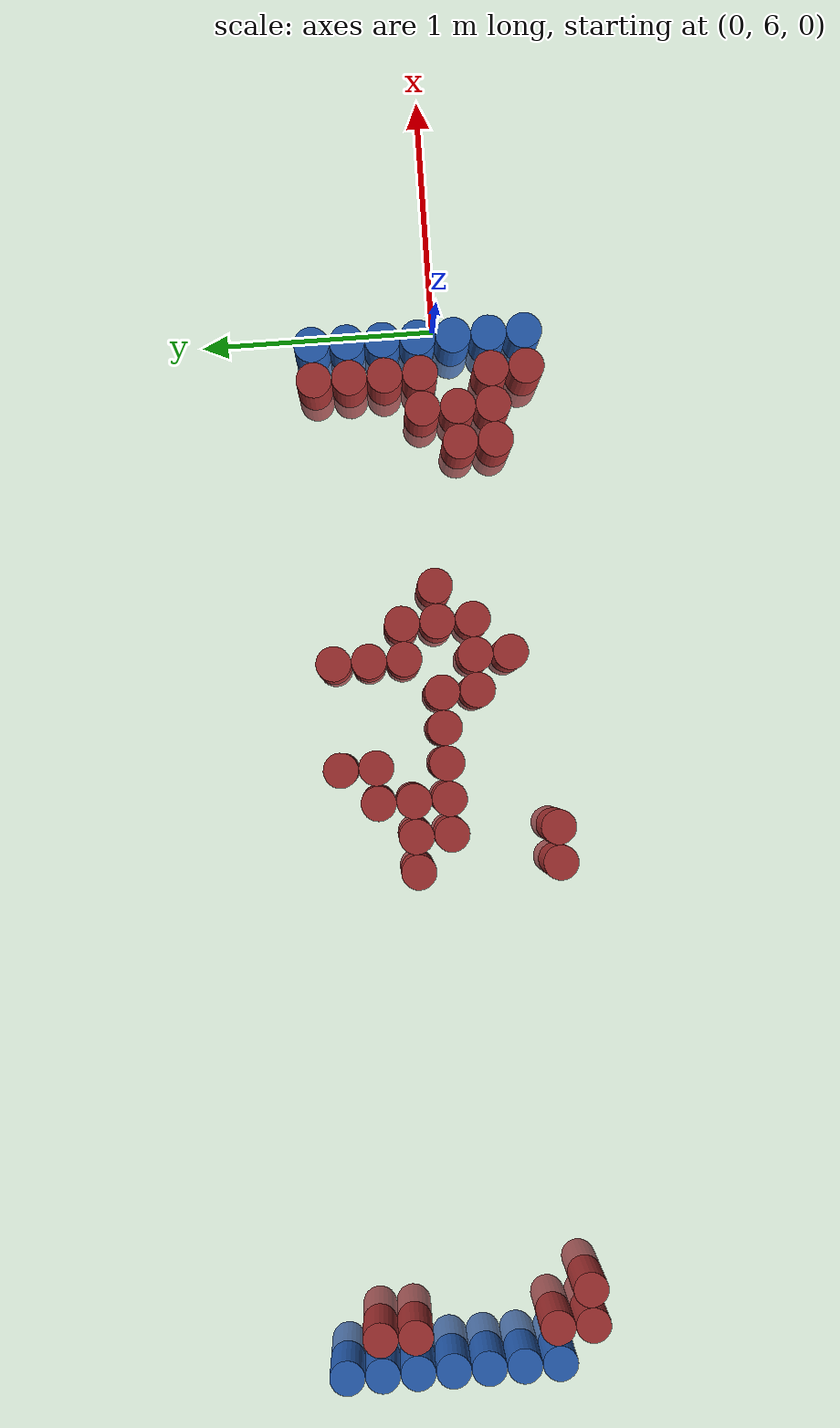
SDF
<sdf version="1.6">
 <world name="default">
  <model name="ground_plane">
   <static>1</static>
   <link name="link">
    <collision name="collision">
     <geometry><plane><normal>0 0 1</normal><size>100 100</size></plane></geometry>
     <surface><friction><ode><mu>100</mu><mu2>50</mu2></ode></friction></surface>
    </collision>
    <visual name="visual">
     <cast_shadows>0</cast_shadows>
     <geometry><plane><normal>0 0 1</normal><size>100 100</size></plane></geometry>
     <material>
      <script><uri>file://media/materials/scripts/gazebo.material</uri><name>Gazebo/Grey</name></script>
     </material>
    </visual>
   </link>
  </model>
  <model name="unit_cylinder_100">
   <static>1</static>
   <pose>-4.425000 5.775000 0.000000 0.000000 0.000000 0.000000</pose>
   <link name="link">
    <inertial>
     <mass>1</mass>
     <inertia><ixx>0.145833</ixx><ixy>0</ixy><ixz>0</ixz><iyy>0.145833</iyy><iyz>0</iyz><izz>0.125</izz></inertia>
    </inertial>
    <collision name="collision">
     <geometry><cylinder><radius>0.075000</radius><length>1</length></cylinder></geometry>
    </collision>
    <visual name="visual">
     <geometry><cylinder><radius>0.075000</radius><length>1</length></cylinder></geometry>
     <material>
      <ambient>0.152000 0.379000 0.720000 1</ambient>
      <diffuse>0.152000 0.379000 0.720000 1</diffuse>
     </material>
     <material>
      <script><name>Gazebo/Grey</name><uri>file://media/materials/scripts/gazebo.material</uri></script>
     </material>
    </visual>
   </link>
  </model>
  <model name="unit_cylinder_101">
   <static>1</static>
   <pose>-4.425000 5.925000 0.000000 0.000000 0.000000 0.000000</pose>
   <link name="link">
    <inertial>
     <mass>1</mass>
     <inertia><ixx>0.145833</ixx><ixy>0</ixy><ixz>0</ixz><iyy>0.145833</iyy><iyz>0</iyz><izz>0.125</izz></inertia>
    </inertial>
    <collision name="collision">
     <geometry><cylinder><radius>0.075000</radius><length>1</length></cylinder></geometry>
    </collision>
    <visual name="visual">
     <geometry><cylinder><radius>0.075000</radius><length>1</length></cylinder></geometry>
     <material>
      <ambient>0.152000 0.379000 0.720000 1</ambient>
      <diffuse>0.152000 0.379000 0.720000 1</diffuse>
     </material>
     <material>
      <script><name>Gazebo/Grey</name><uri>file://media/materials/scripts/gazebo.material</uri></script>
     </material>
    </visual>
   </link>
  </model>
  <model name="unit_cylinder_102">
   <static>1</static>
   <pose>-4.425000 6.075000 0.000000 0.000000 0.000000 0.000000</pose>
   <link name="link">
    <inertial>
     <mass>1</mass>
     <inertia><ixx>0.145833</ixx><ixy>0</ixy><ixz>0</ixz><iyy>0.145833</iyy><iyz>0</iyz><izz>0.125</izz></inertia>
    </inertial>
    <collision name="collision">
     <geometry><cylinder><radius>0.075000</radius><length>1</length></cylinder></geometry>
    </collision>
    <visual name="visual">
     <geometry><cylinder><radius>0.075000</radius><length>1</length></cylinder></geometry>
     <material>
      <ambient>0.152000 0.379000 0.720000 1</ambient>
      <diffuse>0.152000 0.379000 0.720000 1</diffuse>
     </material>
     <material>
      <script><name>Gazebo/Grey</name><uri>file://media/materials/scripts/gazebo.material</uri></script>
     </material>
    </visual>
   </link>
  </model>
  <model name="unit_cylinder_103">
   <static>1</static>
   <pose>-4.425000 6.225000 0.000000 0.000000 0.000000 0.000000</pose>
   <link name="link">
    <inertial>
     <mass>1</mass>
     <inertia><ixx>0.145833</ixx><ixy>0</ixy><ixz>0</ixz><iyy>0.145833</iyy><iyz>0</iyz><izz>0.125</izz></inertia>
    </inertial>
    <collision name="collision">
     <geometry><cylinder><radius>0.075000</radius><length>1</length></cylinder></geometry>
    </collision>
    <visual name="visual">
     <geometry><cylinder><radius>0.075000</radius><length>1</length></cylinder></geometry>
     <material>
      <ambient>0.152000 0.379000 0.720000 1</ambient>
      <diffuse>0.152000 0.379000 0.720000 1</diffuse>
     </material>
     <material>
      <script><name>Gazebo/Grey</name><uri>file://media/materials/scripts/gazebo.material</uri></script>
     </material>
    </visual>
   </link>
  </model>
  <model name="unit_cylinder_104">
   <static>1</static>
   <pose>-4.425000 6.375000 0.000000 0.000000 0.000000 0.000000</pose>
   <link name="link">
    <inertial>
     <mass>1</mass>
     <inertia><ixx>0.145833</ixx><ixy>0</ixy><ixz>0</ixz><iyy>0.145833</iyy><iyz>0</iyz><izz>0.125</izz></inertia>
    </inertial>
    <collision name="collision">
     <geometry><cylinder><radius>0.075000</radius><length>1</length></cylinder></geometry>
    </collision>
    <visual name="visual">
     <geometry><cylinder><radius>0.075000</radius><length>1</length></cylinder></geometry>
     <material>
      <ambient>0.152000 0.379000 0.720000 1</ambient>
      <diffuse>0.152000 0.379000 0.720000 1</diffuse>
     </material>
     <material>
      <script><name>Gazebo/Grey</name><uri>file://media/materials/scripts/gazebo.material</uri></script>
     </material>
    </visual>
   </link>
  </model>
  <model name="unit_cylinder_105">
   <static>1</static>
   <pose>-4.425000 6.525000 0.000000 0.000000 0.000000 0.000000</pose>
   <link name="link">
    <inertial>
     <mass>1</mass>
     <inertia><ixx>0.145833</ixx><ixy>0</ixy><ixz>0</ixz><iyy>0.145833</iyy><iyz>0</iyz><izz>0.125</izz></inertia>
    </inertial>
    <collision name="collision">
     <geometry><cylinder><radius>0.075000</radius><length>1</length></cylinder></geometry>
    </collision>
    <visual name="visual">
     <geometry><cylinder><radius>0.075000</radius><length>1</length></cylinder></geometry>
     <material>
      <ambient>0.152000 0.379000 0.720000 1</ambient>
      <diffuse>0.152000 0.379000 0.720000 1</diffuse>
     </material>
     <material>
      <script><name>Gazebo/Grey</name><uri>file://media/materials/scripts/gazebo.material</uri></script>
     </material>
    </visual>
   </link>
  </model>
  <model name="unit_cylinder_106">
   <static>1</static>
   <pose>-4.425000 6.675000 0.000000 0.000000 0.000000 0.000000</pose>
   <link name="link">
    <inertial>
     <mass>1</mass>
     <inertia><ixx>0.145833</ixx><ixy>0</ixy><ixz>0</ixz><iyy>0.145833</iyy><iyz>0</iyz><izz>0.125</izz></inertia>
    </inertial>
    <collision name="collision">
     <geometry><cylinder><radius>0.075000</radius><length>1</length></cylinder></geometry>
    </collision>
    <visual name="visual">
     <geometry><cylinder><radius>0.075000</radius><length>1</length></cylinder></geometry>
     <material>
      <ambient>0.152000 0.379000 0.720000 1</ambient>
      <diffuse>0.152000 0.379000 0.720000 1</diffuse>
     </material>
     <material>
      <script><name>Gazebo/Grey</name><uri>file://media/materials/scripts/gazebo.material</uri></script>
     </material>
    </visual>
   </link>
  </model>
  <model name="unit_cylinder_127">
   <static>1</static>
   <pose>-4.275000 5.625000 0.000000 0.000000 0.000000 0.000000</pose>
   <link name="link">
    <inertial>
     <mass>1</mass>
     <inertia><ixx>0.145833</ixx><ixy>0</ixy><ixz>0</ixz><iyy>0.145833</iyy><iyz>0</iyz><izz>0.125</izz></inertia>
    </inertial>
    <collision name="collision">
     <geometry><cylinder><radius>0.075000</radius><length>1</length></cylinder></geometry>
    </collision>
    <visual name="visual">
     <geometry><cylinder><radius>0.075000</radius><length>1</length></cylinder></geometry>
     <material>
      <ambient>0.648000 0.192000 0.192000 1</ambient>
      <diffuse>0.648000 0.192000 0.192000 1</diffuse>
     </material>
     <material>
      <script><name>Gazebo/Grey</name><uri>file://media/materials/scripts/gazebo.material</uri></script>
     </material>
    </visual>
   </link>
  </model>
  <model name="unit_cylinder_128">
   <static>1</static>
   <pose>-4.275000 5.775000 0.000000 0.000000 0.000000 0.000000</pose>
   <link name="link">
    <inertial>
     <mass>1</mass>
     <inertia><ixx>0.145833</ixx><ixy>0</ixy><ixz>0</ixz><iyy>0.145833</iyy><iyz>0</iyz><izz>0.125</izz></inertia>
    </inertial>
    <collision name="collision">
     <geometry><cylinder><radius>0.075000</radius><length>1</length></cylinder></geometry>
    </collision>
    <visual name="visual">
     <geometry><cylinder><radius>0.075000</radius><length>1</length></cylinder></geometry>
     <material>
      <ambient>0.648000 0.192000 0.192000 1</ambient>
      <diffuse>0.648000 0.192000 0.192000 1</diffuse>
     </material>
     <material>
      <script><name>Gazebo/Grey</name><uri>file://media/materials/scripts/gazebo.material</uri></script>
     </material>
    </visual>
   </link>
  </model>
  <model name="unit_cylinder_129">
   <static>1</static>
   <pose>-4.275000 6.375000 0.000000 0.000000 0.000000 0.000000</pose>
   <link name="link">
    <inertial>
     <mass>1</mass>
     <inertia><ixx>0.145833</ixx><ixy>0</ixy><ixz>0</ixz><iyy>0.145833</iyy><iyz>0</iyz><izz>0.125</izz></inertia>
    </inertial>
    <collision name="collision">
     <geometry><cylinder><radius>0.075000</radius><length>1</length></cylinder></geometry>
    </collision>
    <visual name="visual">
     <geometry><cylinder><radius>0.075000</radius><length>1</length></cylinder></geometry>
     <material>
      <ambient>0.648000 0.192000 0.192000 1</ambient>
      <diffuse>0.648000 0.192000 0.192000 1</diffuse>
     </material>
     <material>
      <script><name>Gazebo/Grey</name><uri>file://media/materials/scripts/gazebo.material</uri></script>
     </material>
    </visual>
   </link>
  </model>
  <model name="unit_cylinder_130">
   <static>1</static>
   <pose>-4.275000 6.525000 0.000000 0.000000 0.000000 0.000000</pose>
   <link name="link">
    <inertial>
     <mass>1</mass>
     <inertia><ixx>0.145833</ixx><ixy>0</ixy><ixz>0</ixz><iyy>0.145833</iyy><iyz>0</iyz><izz>0.125</izz></inertia>
    </inertial>
    <collision name="collision">
     <geometry><cylinder><radius>0.075000</radius><length>1</length></cylinder></geometry>
    </collision>
    <visual name="visual">
     <geometry><cylinder><radius>0.075000</radius><length>1</length></cylinder></geometry>
     <material>
      <ambient>0.648000 0.192000 0.192000 1</ambient>
      <diffuse>0.648000 0.192000 0.192000 1</diffuse>
     </material>
     <material>
      <script><name>Gazebo/Grey</name><uri>file://media/materials/scripts/gazebo.material</uri></script>
     </material>
    </visual>
   </link>
  </model>
  <model name="unit_cylinder_141">
   <static>1</static>
   <pose>-4.125000 5.625000 0.000000 0.000000 0.000000 0.000000</pose>
   <link name="link">
    <inertial>
     <mass>1</mass>
     <inertia><ixx>0.145833</ixx><ixy>0</ixy><ixz>0</ixz><iyy>0.145833</iyy><iyz>0</iyz><izz>0.125</izz></inertia>
    </inertial>
    <collision name="collision">
     <geometry><cylinder><radius>0.075000</radius><length>1</length></cylinder></geometry>
    </collision>
    <visual name="visual">
     <geometry><cylinder><radius>0.075000</radius><length>1</length></cylinder></geometry>
     <material>
      <ambient>0.648000 0.192000 0.192000 1</ambient>
      <diffuse>0.648000 0.192000 0.192000 1</diffuse>
     </material>
     <material>
      <script><name>Gazebo/Grey</name><uri>file://media/materials/scripts/gazebo.material</uri></script>
     </material>
    </visual>
   </link>
  </model>
  <model name="unit_cylinder_192">
   <static>1</static>
   <pose>-2.325000 5.625000 0.000000 0.000000 0.000000 0.000000</pose>
   <link name="link">
    <inertial>
     <mass>1</mass>
     <inertia><ixx>0.145833</ixx><ixy>0</ixy><ixz>0</ixz><iyy>0.145833</iyy><iyz>0</iyz><izz>0.125</izz></inertia>
    </inertial>
    <collision name="collision">
     <geometry><cylinder><radius>0.075000</radius><length>1</length></cylinder></geometry>
    </collision>
    <visual name="visual">
     <geometry><cylinder><radius>0.075000</radius><length>1</length></cylinder></geometry>
     <material>
      <ambient>0.648000 0.192000 0.192000 1</ambient>
      <diffuse>0.648000 0.192000 0.192000 1</diffuse>
     </material>
     <material>
      <script><name>Gazebo/Grey</name><uri>file://media/materials/scripts/gazebo.material</uri></script>
     </material>
    </visual>
   </link>
  </model>
  <model name="unit_cylinder_193">
   <static>1</static>
   <pose>-2.325000 6.225000 0.000000 0.000000 0.000000 0.000000</pose>
   <link name="link">
    <inertial>
     <mass>1</mass>
     <inertia><ixx>0.145833</ixx><ixy>0</ixy><ixz>0</ixz><iyy>0.145833</iyy><iyz>0</iyz><izz>0.125</izz></inertia>
    </inertial>
    <collision name="collision">
     <geometry><cylinder><radius>0.075000</radius><length>1</length></cylinder></geometry>
    </collision>
    <visual name="visual">
     <geometry><cylinder><radius>0.075000</radius><length>1</length></cylinder></geometry>
     <material>
      <ambient>0.648000 0.192000 0.192000 1</ambient>
      <diffuse>0.648000 0.192000 0.192000 1</diffuse>
     </material>
     <material>
      <script><name>Gazebo/Grey</name><uri>file://media/materials/scripts/gazebo.material</uri></script>
     </material>
    </visual>
   </link>
  </model>
  <model name="unit_cylinder_194">
   <static>1</static>
   <pose>-2.175000 5.625000 0.000000 0.000000 0.000000 0.000000</pose>
   <link name="link">
    <inertial>
     <mass>1</mass>
     <inertia><ixx>0.145833</ixx><ixy>0</ixy><ixz>0</ixz><iyy>0.145833</iyy><iyz>0</iyz><izz>0.125</izz></inertia>
    </inertial>
    <collision name="collision">
     <geometry><cylinder><radius>0.075000</radius><length>1</length></cylinder></geometry>
    </collision>
    <visual name="visual">
     <geometry><cylinder><radius>0.075000</radius><length>1</length></cylinder></geometry>
     <material>
      <ambient>0.648000 0.192000 0.192000 1</ambient>
      <diffuse>0.648000 0.192000 0.192000 1</diffuse>
     </material>
     <material>
      <script><name>Gazebo/Grey</name><uri>file://media/materials/scripts/gazebo.material</uri></script>
     </material>
    </visual>
   </link>
  </model>
  <model name="unit_cylinder_195">
   <static>1</static>
   <pose>-2.175000 6.075000 0.000000 0.000000 0.000000 0.000000</pose>
   <link name="link">
    <inertial>
     <mass>1</mass>
     <inertia><ixx>0.145833</ixx><ixy>0</ixy><ixz>0</ixz><iyy>0.145833</iyy><iyz>0</iyz><izz>0.125</izz></inertia>
    </inertial>
    <collision name="collision">
     <geometry><cylinder><radius>0.075000</radius><length>1</length></cylinder></geometry>
    </collision>
    <visual name="visual">
     <geometry><cylinder><radius>0.075000</radius><length>1</length></cylinder></geometry>
     <material>
      <ambient>0.648000 0.192000 0.192000 1</ambient>
      <diffuse>0.648000 0.192000 0.192000 1</diffuse>
     </material>
     <material>
      <script><name>Gazebo/Grey</name><uri>file://media/materials/scripts/gazebo.material</uri></script>
     </material>
    </visual>
   </link>
  </model>
  <model name="unit_cylinder_196">
   <static>1</static>
   <pose>-2.175000 6.225000 0.000000 0.000000 0.000000 0.000000</pose>
   <link name="link">
    <inertial>
     <mass>1</mass>
     <inertia><ixx>0.145833</ixx><ixy>0</ixy><ixz>0</ixz><iyy>0.145833</iyy><iyz>0</iyz><izz>0.125</izz></inertia>
    </inertial>
    <collision name="collision">
     <geometry><cylinder><radius>0.075000</radius><length>1</length></cylinder></geometry>
    </collision>
    <visual name="visual">
     <geometry><cylinder><radius>0.075000</radius><length>1</length></cylinder></geometry>
     <material>
      <ambient>0.648000 0.192000 0.192000 1</ambient>
      <diffuse>0.648000 0.192000 0.192000 1</diffuse>
     </material>
     <material>
      <script><name>Gazebo/Grey</name><uri>file://media/materials/scripts/gazebo.material</uri></script>
     </material>
    </visual>
   </link>
  </model>
  <model name="unit_cylinder_197">
   <static>1</static>
   <pose>-2.025000 6.075000 0.000000 0.000000 0.000000 0.000000</pose>
   <link name="link">
    <inertial>
     <mass>1</mass>
     <inertia><ixx>0.145833</ixx><ixy>0</ixy><ixz>0</ixz><iyy>0.145833</iyy><iyz>0</iyz><izz>0.125</izz></inertia>
    </inertial>
    <collision name="collision">
     <geometry><cylinder><radius>0.075000</radius><length>1</length></cylinder></geometry>
    </collision>
    <visual name="visual">
     <geometry><cylinder><radius>0.075000</radius><length>1</length></cylinder></geometry>
     <material>
      <ambient>0.648000 0.192000 0.192000 1</ambient>
      <diffuse>0.648000 0.192000 0.192000 1</diffuse>
     </material>
     <material>
      <script><name>Gazebo/Grey</name><uri>file://media/materials/scripts/gazebo.material</uri></script>
     </material>
    </visual>
   </link>
  </model>
  <model name="unit_cylinder_198">
   <static>1</static>
   <pose>-2.025000 6.225000 0.000000 0.000000 0.000000 0.000000</pose>
   <link name="link">
    <inertial>
     <mass>1</mass>
     <inertia><ixx>0.145833</ixx><ixy>0</ixy><ixz>0</ixz><iyy>0.145833</iyy><iyz>0</iyz><izz>0.125</izz></inertia>
    </inertial>
    <collision name="collision">
     <geometry><cylinder><radius>0.075000</radius><length>1</length></cylinder></geometry>
    </collision>
    <visual name="visual">
     <geometry><cylinder><radius>0.075000</radius><length>1</length></cylinder></geometry>
     <material>
      <ambient>0.648000 0.192000 0.192000 1</ambient>
      <diffuse>0.648000 0.192000 0.192000 1</diffuse>
     </material>
     <material>
      <script><name>Gazebo/Grey</name><uri>file://media/materials/scripts/gazebo.material</uri></script>
     </material>
    </visual>
   </link>
  </model>
  <model name="unit_cylinder_199">
   <static>1</static>
   <pose>-2.025000 6.375000 0.000000 0.000000 0.000000 0.000000</pose>
   <link name="link">
    <inertial>
     <mass>1</mass>
     <inertia><ixx>0.145833</ixx><ixy>0</ixy><ixz>0</ixz><iyy>0.145833</iyy><iyz>0</iyz><izz>0.125</izz></inertia>
    </inertial>
    <collision name="collision">
     <geometry><cylinder><radius>0.075000</radius><length>1</length></cylinder></geometry>
    </collision>
    <visual name="visual">
     <geometry><cylinder><radius>0.075000</radius><length>1</length></cylinder></geometry>
     <material>
      <ambient>0.648000 0.192000 0.192000 1</ambient>
      <diffuse>0.648000 0.192000 0.192000 1</diffuse>
     </material>
     <material>
      <script><name>Gazebo/Grey</name><uri>file://media/materials/scripts/gazebo.material</uri></script>
     </material>
    </visual>
   </link>
  </model>
  <model name="unit_cylinder_201">
   <static>1</static>
   <pose>-1.875000 6.075000 0.000000 0.000000 0.000000 0.000000</pose>
   <link name="link">
    <inertial>
     <mass>1</mass>
     <inertia><ixx>0.145833</ixx><ixy>0</ixy><ixz>0</ixz><iyy>0.145833</iyy><iyz>0</iyz><izz>0.125</izz></inertia>
    </inertial>
    <collision name="collision">
     <geometry><cylinder><radius>0.075000</radius><length>1</length></cylinder></geometry>
    </collision>
    <visual name="visual">
     <geometry><cylinder><radius>0.075000</radius><length>1</length></cylinder></geometry>
     <material>
      <ambient>0.648000 0.192000 0.192000 1</ambient>
      <diffuse>0.648000 0.192000 0.192000 1</diffuse>
     </material>
     <material>
      <script><name>Gazebo/Grey</name><uri>file://media/materials/scripts/gazebo.material</uri></script>
     </material>
    </visual>
   </link>
  </model>
  <model name="unit_cylinder_202">
   <static>1</static>
   <pose>-1.875000 6.375000 0.000000 0.000000 0.000000 0.000000</pose>
   <link name="link">
    <inertial>
     <mass>1</mass>
     <inertia><ixx>0.145833</ixx><ixy>0</ixy><ixz>0</ixz><iyy>0.145833</iyy><iyz>0</iyz><izz>0.125</izz></inertia>
    </inertial>
    <collision name="collision">
     <geometry><cylinder><radius>0.075000</radius><length>1</length></cylinder></geometry>
    </collision>
    <visual name="visual">
     <geometry><cylinder><radius>0.075000</radius><length>1</length></cylinder></geometry>
     <material>
      <ambient>0.648000 0.192000 0.192000 1</ambient>
      <diffuse>0.648000 0.192000 0.192000 1</diffuse>
     </material>
     <material>
      <script><name>Gazebo/Grey</name><uri>file://media/materials/scripts/gazebo.material</uri></script>
     </material>
    </visual>
   </link>
  </model>
  <model name="unit_cylinder_203">
   <static>1</static>
   <pose>-1.875000 6.525000 0.000000 0.000000 0.000000 0.000000</pose>
   <link name="link">
    <inertial>
     <mass>1</mass>
     <inertia><ixx>0.145833</ixx><ixy>0</ixy><ixz>0</ixz><iyy>0.145833</iyy><iyz>0</iyz><izz>0.125</izz></inertia>
    </inertial>
    <collision name="collision">
     <geometry><cylinder><radius>0.075000</radius><length>1</length></cylinder></geometry>
    </collision>
    <visual name="visual">
     <geometry><cylinder><radius>0.075000</radius><length>1</length></cylinder></geometry>
     <material>
      <ambient>0.648000 0.192000 0.192000 1</ambient>
      <diffuse>0.648000 0.192000 0.192000 1</diffuse>
     </material>
     <material>
      <script><name>Gazebo/Grey</name><uri>file://media/materials/scripts/gazebo.material</uri></script>
     </material>
    </visual>
   </link>
  </model>
  <model name="unit_cylinder_208">
   <static>1</static>
   <pose>-1.725000 6.075000 0.000000 0.000000 0.000000 0.000000</pose>
   <link name="link">
    <inertial>
     <mass>1</mass>
     <inertia><ixx>0.145833</ixx><ixy>0</ixy><ixz>0</ixz><iyy>0.145833</iyy><iyz>0</iyz><izz>0.125</izz></inertia>
    </inertial>
    <collision name="collision">
     <geometry><cylinder><radius>0.075000</radius><length>1</length></cylinder></geometry>
    </collision>
    <visual name="visual">
     <geometry><cylinder><radius>0.075000</radius><length>1</length></cylinder></geometry>
     <material>
      <ambient>0.648000 0.192000 0.192000 1</ambient>
      <diffuse>0.648000 0.192000 0.192000 1</diffuse>
     </material>
     <material>
      <script><name>Gazebo/Grey</name><uri>file://media/materials/scripts/gazebo.material</uri></script>
     </material>
    </visual>
   </link>
  </model>
  <model name="unit_cylinder_215">
   <static>1</static>
   <pose>-1.575000 5.925000 0.000000 0.000000 0.000000 0.000000</pose>
   <link name="link">
    <inertial>
     <mass>1</mass>
     <inertia><ixx>0.145833</ixx><ixy>0</ixy><ixz>0</ixz><iyy>0.145833</iyy><iyz>0</iyz><izz>0.125</izz></inertia>
    </inertial>
    <collision name="collision">
     <geometry><cylinder><radius>0.075000</radius><length>1</length></cylinder></geometry>
    </collision>
    <visual name="visual">
     <geometry><cylinder><radius>0.075000</radius><length>1</length></cylinder></geometry>
     <material>
      <ambient>0.648000 0.192000 0.192000 1</ambient>
      <diffuse>0.648000 0.192000 0.192000 1</diffuse>
     </material>
     <material>
      <script><name>Gazebo/Grey</name><uri>file://media/materials/scripts/gazebo.material</uri></script>
     </material>
    </visual>
   </link>
  </model>
  <model name="unit_cylinder_216">
   <static>1</static>
   <pose>-1.575000 6.075000 0.000000 0.000000 0.000000 0.000000</pose>
   <link name="link">
    <inertial>
     <mass>1</mass>
     <inertia><ixx>0.145833</ixx><ixy>0</ixy><ixz>0</ixz><iyy>0.145833</iyy><iyz>0</iyz><izz>0.125</izz></inertia>
    </inertial>
    <collision name="collision">
     <geometry><cylinder><radius>0.075000</radius><length>1</length></cylinder></geometry>
    </collision>
    <visual name="visual">
     <geometry><cylinder><radius>0.075000</radius><length>1</length></cylinder></geometry>
     <material>
      <ambient>0.648000 0.192000 0.192000 1</ambient>
      <diffuse>0.648000 0.192000 0.192000 1</diffuse>
     </material>
     <material>
      <script><name>Gazebo/Grey</name><uri>file://media/materials/scripts/gazebo.material</uri></script>
     </material>
    </visual>
   </link>
  </model>
  <model name="unit_cylinder_224">
   <static>1</static>
   <pose>-1.425000 5.775000 0.000000 0.000000 0.000000 0.000000</pose>
   <link name="link">
    <inertial>
     <mass>1</mass>
     <inertia><ixx>0.145833</ixx><ixy>0</ixy><ixz>0</ixz><iyy>0.145833</iyy><iyz>0</iyz><izz>0.125</izz></inertia>
    </inertial>
    <collision name="collision">
     <geometry><cylinder><radius>0.075000</radius><length>1</length></cylinder></geometry>
    </collision>
    <visual name="visual">
     <geometry><cylinder><radius>0.075000</radius><length>1</length></cylinder></geometry>
     <material>
      <ambient>0.648000 0.192000 0.192000 1</ambient>
      <diffuse>0.648000 0.192000 0.192000 1</diffuse>
     </material>
     <material>
      <script><name>Gazebo/Grey</name><uri>file://media/materials/scripts/gazebo.material</uri></script>
     </material>
    </visual>
   </link>
  </model>
  <model name="unit_cylinder_225">
   <static>1</static>
   <pose>-1.425000 5.925000 0.000000 0.000000 0.000000 0.000000</pose>
   <link name="link">
    <inertial>
     <mass>1</mass>
     <inertia><ixx>0.145833</ixx><ixy>0</ixy><ixz>0</ixz><iyy>0.145833</iyy><iyz>0</iyz><izz>0.125</izz></inertia>
    </inertial>
    <collision name="collision">
     <geometry><cylinder><radius>0.075000</radius><length>1</length></cylinder></geometry>
    </collision>
    <visual name="visual">
     <geometry><cylinder><radius>0.075000</radius><length>1</length></cylinder></geometry>
     <material>
      <ambient>0.648000 0.192000 0.192000 1</ambient>
      <diffuse>0.648000 0.192000 0.192000 1</diffuse>
     </material>
     <material>
      <script><name>Gazebo/Grey</name><uri>file://media/materials/scripts/gazebo.material</uri></script>
     </material>
    </visual>
   </link>
  </model>
  <model name="unit_cylinder_226">
   <static>1</static>
   <pose>-1.425000 6.225000 0.000000 0.000000 0.000000 0.000000</pose>
   <link name="link">
    <inertial>
     <mass>1</mass>
     <inertia><ixx>0.145833</ixx><ixy>0</ixy><ixz>0</ixz><iyy>0.145833</iyy><iyz>0</iyz><izz>0.125</izz></inertia>
    </inertial>
    <collision name="collision">
     <geometry><cylinder><radius>0.075000</radius><length>1</length></cylinder></geometry>
    </collision>
    <visual name="visual">
     <geometry><cylinder><radius>0.075000</radius><length>1</length></cylinder></geometry>
     <material>
      <ambient>0.648000 0.192000 0.192000 1</ambient>
      <diffuse>0.648000 0.192000 0.192000 1</diffuse>
     </material>
     <material>
      <script><name>Gazebo/Grey</name><uri>file://media/materials/scripts/gazebo.material</uri></script>
     </material>
    </visual>
   </link>
  </model>
  <model name="unit_cylinder_227">
   <static>1</static>
   <pose>-1.425000 6.375000 0.000000 0.000000 0.000000 0.000000</pose>
   <link name="link">
    <inertial>
     <mass>1</mass>
     <inertia><ixx>0.145833</ixx><ixy>0</ixy><ixz>0</ixz><iyy>0.145833</iyy><iyz>0</iyz><izz>0.125</izz></inertia>
    </inertial>
    <collision name="collision">
     <geometry><cylinder><radius>0.075000</radius><length>1</length></cylinder></geometry>
    </collision>
    <visual name="visual">
     <geometry><cylinder><radius>0.075000</radius><length>1</length></cylinder></geometry>
     <material>
      <ambient>0.648000 0.192000 0.192000 1</ambient>
      <diffuse>0.648000 0.192000 0.192000 1</diffuse>
     </material>
     <material>
      <script><name>Gazebo/Grey</name><uri>file://media/materials/scripts/gazebo.material</uri></script>
     </material>
    </visual>
   </link>
  </model>
  <model name="unit_cylinder_228">
   <static>1</static>
   <pose>-1.425000 6.525000 0.000000 0.000000 0.000000 0.000000</pose>
   <link name="link">
    <inertial>
     <mass>1</mass>
     <inertia><ixx>0.145833</ixx><ixy>0</ixy><ixz>0</ixz><iyy>0.145833</iyy><iyz>0</iyz><izz>0.125</izz></inertia>
    </inertial>
    <collision name="collision">
     <geometry><cylinder><radius>0.075000</radius><length>1</length></cylinder></geometry>
    </collision>
    <visual name="visual">
     <geometry><cylinder><radius>0.075000</radius><length>1</length></cylinder></geometry>
     <material>
      <ambient>0.648000 0.192000 0.192000 1</ambient>
      <diffuse>0.648000 0.192000 0.192000 1</diffuse>
     </material>
     <material>
      <script><name>Gazebo/Grey</name><uri>file://media/materials/scripts/gazebo.material</uri></script>
     </material>
    </visual>
   </link>
  </model>
  <model name="unit_cylinder_233">
   <static>1</static>
   <pose>-1.275000 5.925000 0.000000 0.000000 0.000000 0.000000</pose>
   <link name="link">
    <inertial>
     <mass>1</mass>
     <inertia><ixx>0.145833</ixx><ixy>0</ixy><ixz>0</ixz><iyy>0.145833</iyy><iyz>0</iyz><izz>0.125</izz></inertia>
    </inertial>
    <collision name="collision">
     <geometry><cylinder><radius>0.075000</radius><length>1</length></cylinder></geometry>
    </collision>
    <visual name="visual">
     <geometry><cylinder><radius>0.075000</radius><length>1</length></cylinder></geometry>
     <material>
      <ambient>0.648000 0.192000 0.192000 1</ambient>
      <diffuse>0.648000 0.192000 0.192000 1</diffuse>
     </material>
     <material>
      <script><name>Gazebo/Grey</name><uri>file://media/materials/scripts/gazebo.material</uri></script>
     </material>
    </visual>
   </link>
  </model>
  <model name="unit_cylinder_234">
   <static>1</static>
   <pose>-1.275000 6.075000 0.000000 0.000000 0.000000 0.000000</pose>
   <link name="link">
    <inertial>
     <mass>1</mass>
     <inertia><ixx>0.145833</ixx><ixy>0</ixy><ixz>0</ixz><iyy>0.145833</iyy><iyz>0</iyz><izz>0.125</izz></inertia>
    </inertial>
    <collision name="collision">
     <geometry><cylinder><radius>0.075000</radius><length>1</length></cylinder></geometry>
    </collision>
    <visual name="visual">
     <geometry><cylinder><radius>0.075000</radius><length>1</length></cylinder></geometry>
     <material>
      <ambient>0.648000 0.192000 0.192000 1</ambient>
      <diffuse>0.648000 0.192000 0.192000 1</diffuse>
     </material>
     <material>
      <script><name>Gazebo/Grey</name><uri>file://media/materials/scripts/gazebo.material</uri></script>
     </material>
    </visual>
   </link>
  </model>
  <model name="unit_cylinder_235">
   <static>1</static>
   <pose>-1.275000 6.225000 0.000000 0.000000 0.000000 0.000000</pose>
   <link name="link">
    <inertial>
     <mass>1</mass>
     <inertia><ixx>0.145833</ixx><ixy>0</ixy><ixz>0</ixz><iyy>0.145833</iyy><iyz>0</iyz><izz>0.125</izz></inertia>
    </inertial>
    <collision name="collision">
     <geometry><cylinder><radius>0.075000</radius><length>1</length></cylinder></geometry>
    </collision>
    <visual name="visual">
     <geometry><cylinder><radius>0.075000</radius><length>1</length></cylinder></geometry>
     <material>
      <ambient>0.648000 0.192000 0.192000 1</ambient>
      <diffuse>0.648000 0.192000 0.192000 1</diffuse>
     </material>
     <material>
      <script><name>Gazebo/Grey</name><uri>file://media/materials/scripts/gazebo.material</uri></script>
     </material>
    </visual>
   </link>
  </model>
  <model name="unit_cylinder_241">
   <static>1</static>
   <pose>-1.125000 6.075000 0.000000 0.000000 0.000000 0.000000</pose>
   <link name="link">
    <inertial>
     <mass>1</mass>
     <inertia><ixx>0.145833</ixx><ixy>0</ixy><ixz>0</ixz><iyy>0.145833</iyy><iyz>0</iyz><izz>0.125</izz></inertia>
    </inertial>
    <collision name="collision">
     <geometry><cylinder><radius>0.075000</radius><length>1</length></cylinder></geometry>
    </collision>
    <visual name="visual">
     <geometry><cylinder><radius>0.075000</radius><length>1</length></cylinder></geometry>
     <material>
      <ambient>0.648000 0.192000 0.192000 1</ambient>
      <diffuse>0.648000 0.192000 0.192000 1</diffuse>
     </material>
     <material>
      <script><name>Gazebo/Grey</name><uri>file://media/materials/scripts/gazebo.material</uri></script>
     </material>
    </visual>
   </link>
  </model>
  <model name="unit_cylinder_258">
   <static>1</static>
   <pose>-0.525000 5.775000 0.000000 0.000000 0.000000 0.000000</pose>
   <link name="link">
    <inertial>
     <mass>1</mass>
     <inertia><ixx>0.145833</ixx><ixy>0</ixy><ixz>0</ixz><iyy>0.145833</iyy><iyz>0</iyz><izz>0.125</izz></inertia>
    </inertial>
    <collision name="collision">
     <geometry><cylinder><radius>0.075000</radius><length>1</length></cylinder></geometry>
    </collision>
    <visual name="visual">
     <geometry><cylinder><radius>0.075000</radius><length>1</length></cylinder></geometry>
     <material>
      <ambient>0.648000 0.192000 0.192000 1</ambient>
      <diffuse>0.648000 0.192000 0.192000 1</diffuse>
     </material>
     <material>
      <script><name>Gazebo/Grey</name><uri>file://media/materials/scripts/gazebo.material</uri></script>
     </material>
    </visual>
   </link>
  </model>
  <model name="unit_cylinder_259">
   <static>1</static>
   <pose>-0.525000 5.925000 0.000000 0.000000 0.000000 0.000000</pose>
   <link name="link">
    <inertial>
     <mass>1</mass>
     <inertia><ixx>0.145833</ixx><ixy>0</ixy><ixz>0</ixz><iyy>0.145833</iyy><iyz>0</iyz><izz>0.125</izz></inertia>
    </inertial>
    <collision name="collision">
     <geometry><cylinder><radius>0.075000</radius><length>1</length></cylinder></geometry>
    </collision>
    <visual name="visual">
     <geometry><cylinder><radius>0.075000</radius><length>1</length></cylinder></geometry>
     <material>
      <ambient>0.648000 0.192000 0.192000 1</ambient>
      <diffuse>0.648000 0.192000 0.192000 1</diffuse>
     </material>
     <material>
      <script><name>Gazebo/Grey</name><uri>file://media/materials/scripts/gazebo.material</uri></script>
     </material>
    </visual>
   </link>
  </model>
  <model name="unit_cylinder_264">
   <static>1</static>
   <pose>-0.375000 5.775000 0.000000 0.000000 0.000000 0.000000</pose>
   <link name="link">
    <inertial>
     <mass>1</mass>
     <inertia><ixx>0.145833</ixx><ixy>0</ixy><ixz>0</ixz><iyy>0.145833</iyy><iyz>0</iyz><izz>0.125</izz></inertia>
    </inertial>
    <collision name="collision">
     <geometry><cylinder><radius>0.075000</radius><length>1</length></cylinder></geometry>
    </collision>
    <visual name="visual">
     <geometry><cylinder><radius>0.075000</radius><length>1</length></cylinder></geometry>
     <material>
      <ambient>0.648000 0.192000 0.192000 1</ambient>
      <diffuse>0.648000 0.192000 0.192000 1</diffuse>
     </material>
     <material>
      <script><name>Gazebo/Grey</name><uri>file://media/materials/scripts/gazebo.material</uri></script>
     </material>
    </visual>
   </link>
  </model>
  <model name="unit_cylinder_265">
   <static>1</static>
   <pose>-0.375000 5.925000 0.000000 0.000000 0.000000 0.000000</pose>
   <link name="link">
    <inertial>
     <mass>1</mass>
     <inertia><ixx>0.145833</ixx><ixy>0</ixy><ixz>0</ixz><iyy>0.145833</iyy><iyz>0</iyz><izz>0.125</izz></inertia>
    </inertial>
    <collision name="collision">
     <geometry><cylinder><radius>0.075000</radius><length>1</length></cylinder></geometry>
    </collision>
    <visual name="visual">
     <geometry><cylinder><radius>0.075000</radius><length>1</length></cylinder></geometry>
     <material>
      <ambient>0.648000 0.192000 0.192000 1</ambient>
      <diffuse>0.648000 0.192000 0.192000 1</diffuse>
     </material>
     <material>
      <script><name>Gazebo/Grey</name><uri>file://media/materials/scripts/gazebo.material</uri></script>
     </material>
    </visual>
   </link>
  </model>
  <model name="unit_cylinder_266">
   <static>1</static>
   <pose>-0.375000 6.075000 0.000000 0.000000 0.000000 0.000000</pose>
   <link name="link">
    <inertial>
     <mass>1</mass>
     <inertia><ixx>0.145833</ixx><ixy>0</ixy><ixz>0</ixz><iyy>0.145833</iyy><iyz>0</iyz><izz>0.125</izz></inertia>
    </inertial>
    <collision name="collision">
     <geometry><cylinder><radius>0.075000</radius><length>1</length></cylinder></geometry>
    </collision>
    <visual name="visual">
     <geometry><cylinder><radius>0.075000</radius><length>1</length></cylinder></geometry>
     <material>
      <ambient>0.648000 0.192000 0.192000 1</ambient>
      <diffuse>0.648000 0.192000 0.192000 1</diffuse>
     </material>
     <material>
      <script><name>Gazebo/Grey</name><uri>file://media/materials/scripts/gazebo.material</uri></script>
     </material>
    </visual>
   </link>
  </model>
  <model name="unit_cylinder_277">
   <static>1</static>
   <pose>-0.225000 5.625000 0.000000 0.000000 0.000000 0.000000</pose>
   <link name="link">
    <inertial>
     <mass>1</mass>
     <inertia><ixx>0.145833</ixx><ixy>0</ixy><ixz>0</ixz><iyy>0.145833</iyy><iyz>0</iyz><izz>0.125</izz></inertia>
    </inertial>
    <collision name="collision">
     <geometry><cylinder><radius>0.075000</radius><length>1</length></cylinder></geometry>
    </collision>
    <visual name="visual">
     <geometry><cylinder><radius>0.075000</radius><length>1</length></cylinder></geometry>
     <material>
      <ambient>0.648000 0.192000 0.192000 1</ambient>
      <diffuse>0.648000 0.192000 0.192000 1</diffuse>
     </material>
     <material>
      <script><name>Gazebo/Grey</name><uri>file://media/materials/scripts/gazebo.material</uri></script>
     </material>
    </visual>
   </link>
  </model>
  <model name="unit_cylinder_278">
   <static>1</static>
   <pose>-0.225000 5.775000 0.000000 0.000000 0.000000 0.000000</pose>
   <link name="link">
    <inertial>
     <mass>1</mass>
     <inertia><ixx>0.145833</ixx><ixy>0</ixy><ixz>0</ixz><iyy>0.145833</iyy><iyz>0</iyz><izz>0.125</izz></inertia>
    </inertial>
    <collision name="collision">
     <geometry><cylinder><radius>0.075000</radius><length>1</length></cylinder></geometry>
    </collision>
    <visual name="visual">
     <geometry><cylinder><radius>0.075000</radius><length>1</length></cylinder></geometry>
     <material>
      <ambient>0.648000 0.192000 0.192000 1</ambient>
      <diffuse>0.648000 0.192000 0.192000 1</diffuse>
     </material>
     <material>
      <script><name>Gazebo/Grey</name><uri>file://media/materials/scripts/gazebo.material</uri></script>
     </material>
    </visual>
   </link>
  </model>
  <model name="unit_cylinder_279">
   <static>1</static>
   <pose>-0.225000 6.075000 0.000000 0.000000 0.000000 0.000000</pose>
   <link name="link">
    <inertial>
     <mass>1</mass>
     <inertia><ixx>0.145833</ixx><ixy>0</ixy><ixz>0</ixz><iyy>0.145833</iyy><iyz>0</iyz><izz>0.125</izz></inertia>
    </inertial>
    <collision name="collision">
     <geometry><cylinder><radius>0.075000</radius><length>1</length></cylinder></geometry>
    </collision>
    <visual name="visual">
     <geometry><cylinder><radius>0.075000</radius><length>1</length></cylinder></geometry>
     <material>
      <ambient>0.648000 0.192000 0.192000 1</ambient>
      <diffuse>0.648000 0.192000 0.192000 1</diffuse>
     </material>
     <material>
      <script><name>Gazebo/Grey</name><uri>file://media/materials/scripts/gazebo.material</uri></script>
     </material>
    </visual>
   </link>
  </model>
  <model name="unit_cylinder_280">
   <static>1</static>
   <pose>-0.225000 6.225000 0.000000 0.000000 0.000000 0.000000</pose>
   <link name="link">
    <inertial>
     <mass>1</mass>
     <inertia><ixx>0.145833</ixx><ixy>0</ixy><ixz>0</ixz><iyy>0.145833</iyy><iyz>0</iyz><izz>0.125</izz></inertia>
    </inertial>
    <collision name="collision">
     <geometry><cylinder><radius>0.075000</radius><length>1</length></cylinder></geometry>
    </collision>
    <visual name="visual">
     <geometry><cylinder><radius>0.075000</radius><length>1</length></cylinder></geometry>
     <material>
      <ambient>0.648000 0.192000 0.192000 1</ambient>
      <diffuse>0.648000 0.192000 0.192000 1</diffuse>
     </material>
     <material>
      <script><name>Gazebo/Grey</name><uri>file://media/materials/scripts/gazebo.material</uri></script>
     </material>
    </visual>
   </link>
  </model>
  <model name="unit_cylinder_281">
   <static>1</static>
   <pose>-0.225000 6.375000 0.000000 0.000000 0.000000 0.000000</pose>
   <link name="link">
    <inertial>
     <mass>1</mass>
     <inertia><ixx>0.145833</ixx><ixy>0</ixy><ixz>0</ixz><iyy>0.145833</iyy><iyz>0</iyz><izz>0.125</izz></inertia>
    </inertial>
    <collision name="collision">
     <geometry><cylinder><radius>0.075000</radius><length>1</length></cylinder></geometry>
    </collision>
    <visual name="visual">
     <geometry><cylinder><radius>0.075000</radius><length>1</length></cylinder></geometry>
     <material>
      <ambient>0.648000 0.192000 0.192000 1</ambient>
      <diffuse>0.648000 0.192000 0.192000 1</diffuse>
     </material>
     <material>
      <script><name>Gazebo/Grey</name><uri>file://media/materials/scripts/gazebo.material</uri></script>
     </material>
    </visual>
   </link>
  </model>
  <model name="unit_cylinder_282">
   <static>1</static>
   <pose>-0.225000 6.525000 0.000000 0.000000 0.000000 0.000000</pose>
   <link name="link">
    <inertial>
     <mass>1</mass>
     <inertia><ixx>0.145833</ixx><ixy>0</ixy><ixz>0</ixz><iyy>0.145833</iyy><iyz>0</iyz><izz>0.125</izz></inertia>
    </inertial>
    <collision name="collision">
     <geometry><cylinder><radius>0.075000</radius><length>1</length></cylinder></geometry>
    </collision>
    <visual name="visual">
     <geometry><cylinder><radius>0.075000</radius><length>1</length></cylinder></geometry>
     <material>
      <ambient>0.648000 0.192000 0.192000 1</ambient>
      <diffuse>0.648000 0.192000 0.192000 1</diffuse>
     </material>
     <material>
      <script><name>Gazebo/Grey</name><uri>file://media/materials/scripts/gazebo.material</uri></script>
     </material>
    </visual>
   </link>
  </model>
  <model name="unit_cylinder_294">
   <static>1</static>
   <pose>-0.075000 5.625000 0.000000 0.000000 0.000000 0.000000</pose>
   <link name="link">
    <inertial>
     <mass>1</mass>
     <inertia><ixx>0.145833</ixx><ixy>0</ixy><ixz>0</ixz><iyy>0.145833</iyy><iyz>0</iyz><izz>0.125</izz></inertia>
    </inertial>
    <collision name="collision">
     <geometry><cylinder><radius>0.075000</radius><length>1</length></cylinder></geometry>
    </collision>
    <visual name="visual">
     <geometry><cylinder><radius>0.075000</radius><length>1</length></cylinder></geometry>
     <material>
      <ambient>0.152000 0.379000 0.720000 1</ambient>
      <diffuse>0.152000 0.379000 0.720000 1</diffuse>
     </material>
     <material>
      <script><name>Gazebo/Grey</name><uri>file://media/materials/scripts/gazebo.material</uri></script>
     </material>
    </visual>
   </link>
  </model>
  <model name="unit_cylinder_295">
   <static>1</static>
   <pose>-0.075000 5.775000 0.000000 0.000000 0.000000 0.000000</pose>
   <link name="link">
    <inertial>
     <mass>1</mass>
     <inertia><ixx>0.145833</ixx><ixy>0</ixy><ixz>0</ixz><iyy>0.145833</iyy><iyz>0</iyz><izz>0.125</izz></inertia>
    </inertial>
    <collision name="collision">
     <geometry><cylinder><radius>0.075000</radius><length>1</length></cylinder></geometry>
    </collision>
    <visual name="visual">
     <geometry><cylinder><radius>0.075000</radius><length>1</length></cylinder></geometry>
     <material>
      <ambient>0.152000 0.379000 0.720000 1</ambient>
      <diffuse>0.152000 0.379000 0.720000 1</diffuse>
     </material>
     <material>
      <script><name>Gazebo/Grey</name><uri>file://media/materials/scripts/gazebo.material</uri></script>
     </material>
    </visual>
   </link>
  </model>
  <model name="unit_cylinder_296">
   <static>1</static>
   <pose>-0.075000 5.925000 0.000000 0.000000 0.000000 0.000000</pose>
   <link name="link">
    <inertial>
     <mass>1</mass>
     <inertia><ixx>0.145833</ixx><ixy>0</ixy><ixz>0</ixz><iyy>0.145833</iyy><iyz>0</iyz><izz>0.125</izz></inertia>
    </inertial>
    <collision name="collision">
     <geometry><cylinder><radius>0.075000</radius><length>1</length></cylinder></geometry>
    </collision>
    <visual name="visual">
     <geometry><cylinder><radius>0.075000</radius><length>1</length></cylinder></geometry>
     <material>
      <ambient>0.152000 0.379000 0.720000 1</ambient>
      <diffuse>0.152000 0.379000 0.720000 1</diffuse>
     </material>
     <material>
      <script><name>Gazebo/Grey</name><uri>file://media/materials/scripts/gazebo.material</uri></script>
     </material>
    </visual>
   </link>
  </model>
  <model name="unit_cylinder_297">
   <static>1</static>
   <pose>-0.075000 6.075000 0.000000 0.000000 0.000000 0.000000</pose>
   <link name="link">
    <inertial>
     <mass>1</mass>
     <inertia><ixx>0.145833</ixx><ixy>0</ixy><ixz>0</ixz><iyy>0.145833</iyy><iyz>0</iyz><izz>0.125</izz></inertia>
    </inertial>
    <collision name="collision">
     <geometry><cylinder><radius>0.075000</radius><length>1</length></cylinder></geometry>
    </collision>
    <visual name="visual">
     <geometry><cylinder><radius>0.075000</radius><length>1</length></cylinder></geometry>
     <material>
      <ambient>0.152000 0.379000 0.720000 1</ambient>
      <diffuse>0.152000 0.379000 0.720000 1</diffuse>
     </material>
     <material>
      <script><name>Gazebo/Grey</name><uri>file://media/materials/scripts/gazebo.material</uri></script>
     </material>
    </visual>
   </link>
  </model>
  <model name="unit_cylinder_298">
   <static>1</static>
   <pose>-0.075000 6.225000 0.000000 0.000000 0.000000 0.000000</pose>
   <link name="link">
    <inertial>
     <mass>1</mass>
     <inertia><ixx>0.145833</ixx><ixy>0</ixy><ixz>0</ixz><iyy>0.145833</iyy><iyz>0</iyz><izz>0.125</izz></inertia>
    </inertial>
    <collision name="collision">
     <geometry><cylinder><radius>0.075000</radius><length>1</length></cylinder></geometry>
    </collision>
    <visual name="visual">
     <geometry><cylinder><radius>0.075000</radius><length>1</length></cylinder></geometry>
     <material>
      <ambient>0.152000 0.379000 0.720000 1</ambient>
      <diffuse>0.152000 0.379000 0.720000 1</diffuse>
     </material>
     <material>
      <script><name>Gazebo/Grey</name><uri>file://media/materials/scripts/gazebo.material</uri></script>
     </material>
    </visual>
   </link>
  </model>
  <model name="unit_cylinder_299">
   <static>1</static>
   <pose>-0.075000 6.375000 0.000000 0.000000 0.000000 0.000000</pose>
   <link name="link">
    <inertial>
     <mass>1</mass>
     <inertia><ixx>0.145833</ixx><ixy>0</ixy><ixz>0</ixz><iyy>0.145833</iyy><iyz>0</iyz><izz>0.125</izz></inertia>
    </inertial>
    <collision name="collision">
     <geometry><cylinder><radius>0.075000</radius><length>1</length></cylinder></geometry>
    </collision>
    <visual name="visual">
     <geometry><cylinder><radius>0.075000</radius><length>1</length></cylinder></geometry>
     <material>
      <ambient>0.152000 0.379000 0.720000 1</ambient>
      <diffuse>0.152000 0.379000 0.720000 1</diffuse>
     </material>
     <material>
      <script><name>Gazebo/Grey</name><uri>file://media/materials/scripts/gazebo.material</uri></script>
     </material>
    </visual>
   </link>
  </model>
  <model name="unit_cylinder_300">
   <static>1</static>
   <pose>-0.075000 6.525000 0.000000 0.000000 0.000000 0.000000</pose>
   <link name="link">
    <inertial>
     <mass>1</mass>
     <inertia><ixx>0.145833</ixx><ixy>0</ixy><ixz>0</ixz><iyy>0.145833</iyy><iyz>0</iyz><izz>0.125</izz></inertia>
    </inertial>
    <collision name="collision">
     <geometry><cylinder><radius>0.075000</radius><length>1</length></cylinder></geometry>
    </collision>
    <visual name="visual">
     <geometry><cylinder><radius>0.075000</radius><length>1</length></cylinder></geometry>
     <material>
      <ambient>0.152000 0.379000 0.720000 1</ambient>
      <diffuse>0.152000 0.379000 0.720000 1</diffuse>
     </material>
     <material>
      <script><name>Gazebo/Grey</name><uri>file://media/materials/scripts/gazebo.material</uri></script>
     </material>
    </visual>
   </link>
  </model>
 </world>
</sdf>
